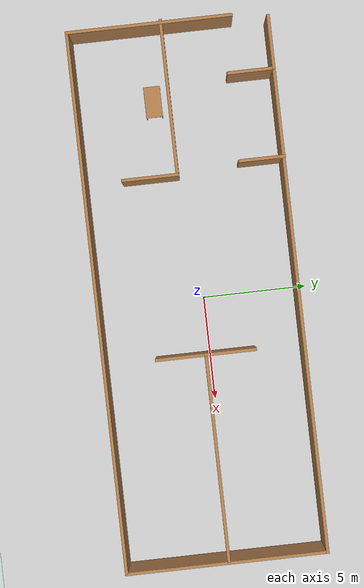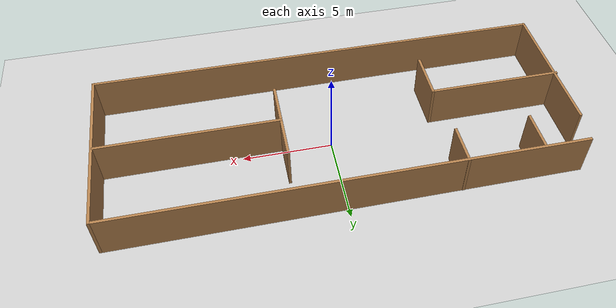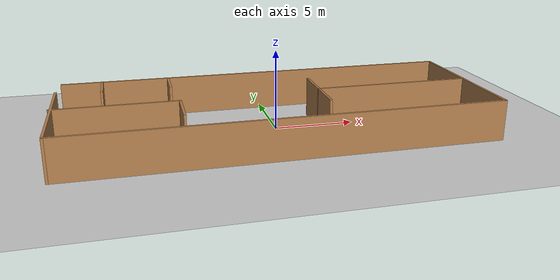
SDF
<sdf version="1.7">
 <world name="default">
  <model name="ground_plane">
   <static>1</static>
   <link name="link">
    <collision name="collision">
     <geometry><plane><normal>0 0 1</normal><size>100 100</size></plane></geometry>
     <surface><friction><ode><mu>100</mu><mu2>50</mu2></ode></friction></surface>
    </collision>
    <visual name="visual">
     <cast_shadows>0</cast_shadows>
     <geometry><plane><normal>0 0 1</normal><size>100 100</size></plane></geometry>
     <material>
      <script><uri>file://media/materials/scripts/gazebo.material</uri><name>Gazebo/Grey</name></script>
     </material>
    </visual>
   </link>
  </model>
  <light name="sun" type="directional">
   <pose>0 0 10 0 -0 0</pose>
   <diffuse>0.8 0.8 0.8 1</diffuse>
   <specular>0.2 0.2 0.2 1</specular>
   <attenuation>
    <range>1000</range>
    <constant>0.9</constant>
    <linear>0.01</linear>
    <quadratic>0.001</quadratic>
   </attenuation>
   <direction>-0.5 0.1 -0.9</direction>
   <spot><inner_angle>0</inner_angle><outer_angle>0</outer_angle><falloff>0</falloff></spot>
  </light>
  <scene><shadows>0</shadows><ambient>0.4 0.4 0.4 1</ambient><background>0.7 0.7 0.7 1</background></scene>
  <physics type="ode">
   <real_time_update_rate>1000</real_time_update_rate>
   <max_step_size>0.001</max_step_size>
   <real_time_factor>1</real_time_factor>
   <ode>
    <solver>
     <type>quick</type>
     <iters>150</iters>
     <precon_iters>0</precon_iters>
     <sor>1.4</sor>
     <use_dynamic_moi_rescaling>1</use_dynamic_moi_rescaling>
    </solver>
    <constraints>
     <cfm>1e-05</cfm>
     <erp>0.2</erp>
     <contact_max_correcting_vel>2000</contact_max_correcting_vel>
     <contact_surface_layer>0.01</contact_surface_layer>
    </constraints>
   </ode>
  </physics>
  <gravity>0 0 -9.8</gravity>
  <magnetic_field>6e-06 2.3e-05 -4.2e-05</magnetic_field>
  <atmosphere type="adiabatic"/>
  <audio><device>default</device></audio>
  <spherical_coordinates>
   <surface_model>EARTH_WGS84</surface_model>
   <latitude_deg>0</latitude_deg>
   <longitude_deg>0</longitude_deg>
   <elevation>0</elevation>
   <heading_deg>0</heading_deg>
  </spherical_coordinates>
  <model name="demo_robot">
   <pose>-0.313875 -0.299677 0 0 -0 0</pose>
   <link name="Wall_10">
    <collision name="Wall_10_Collision">
     <geometry><box><size>2.75 0.15 2.5</size></box></geometry>
     <pose>0 0 1.25 0 -0 0</pose>
    </collision>
    <visual name="Wall_10_Visual">
     <pose>0 0 1.25 0 -0 0</pose>
     <geometry><box><size>2.75 0.15 2.5</size></box></geometry>
     <material>
      <script><uri>file://media/materials/scripts/gazebo.material</uri><name>Gazebo/Wood</name></script>
      <ambient>1 1 1 1</ambient>
     </material>
     <meta><layer>0</layer></meta>
    </visual>
    <pose>-5.62022 -1.62507 0 0 -0 -1.5708</pose>
   </link>
   <link name="Wall_13">
    <collision name="Wall_13_Collision">
     <geometry><box><size>10 0.15 2.5</size></box></geometry>
     <pose>0 0 1.25 0 -0 0</pose>
    </collision>
    <visual name="Wall_13_Visual">
     <pose>0 0 1.25 0 -0 0</pose>
     <geometry><box><size>10 0.15 2.5</size></box></geometry>
     <material>
      <script><uri>file://media/materials/scripts/gazebo.material</uri><name>Gazebo/Wood</name></script>
      <ambient>1 1 1 1</ambient>
     </material>
     <meta><layer>0</layer></meta>
    </visual>
    <pose>7.95589 0.079485 0 0 -0 3.14159</pose>
   </link>
   <link name="Wall_14">
    <collision name="Wall_14_Collision">
     <geometry><box><size>2.5 0.15 2.5</size></box></geometry>
     <pose>0 0 1.25 0 -0 0</pose>
    </collision>
    <visual name="Wall_14_Visual">
     <pose>0 0 1.25 0 -0 0</pose>
     <geometry><box><size>2.5 0.15 2.5</size></box></geometry>
     <material>
      <script><uri>file://media/materials/scripts/gazebo.material</uri><name>Gazebo/Wood</name></script>
      <ambient>1 1 1 1</ambient>
     </material>
     <meta><layer>0</layer></meta>
    </visual>
    <pose>3.03089 1.25449 0 0 -0 1.5708</pose>
   </link>
   <link name="Wall_16">
    <collision name="Wall_16_Collision">
     <geometry><box><size>2.5 0.15 2.5</size></box></geometry>
     <pose>0 0 1.25 0 -0 0</pose>
    </collision>
    <visual name="Wall_16_Visual">
     <pose>0 0 1.25 0 -0 0</pose>
     <geometry><box><size>2.5 0.15 2.5</size></box></geometry>
     <material>
      <script><uri>file://media/materials/scripts/gazebo.material</uri><name>Gazebo/Wood</name></script>
      <ambient>1 1 1 1</ambient>
     </material>
     <meta><layer>0</layer></meta>
    </visual>
    <pose>3.03089 -1.09552 0 0 -0 -1.5708</pose>
   </link>
   <link name="Wall_18">
    <collision name="Wall_18_Collision">
     <geometry><box><size>2.25 0.15 2.5</size></box></geometry>
     <pose>0 0 1.25 0 -0 0</pose>
    </collision>
    <visual name="Wall_18_Visual">
     <pose>0 0 1.25 0 -0 0</pose>
     <geometry><box><size>2.25 0.15 2.5</size></box></geometry>
     <material>
      <script><uri>file://media/materials/scripts/gazebo.material</uri><name>Gazebo/Wood</name></script>
      <ambient>1 1 1 1</ambient>
     </material>
     <meta><layer>0</layer></meta>
    </visual>
    <pose>-10.1383 3.68188 0 0 -0 -1.5708</pose>
   </link>
   <link name="Wall_20">
    <collision name="Wall_20_Collision">
     <geometry><box><size>2.25 0.15 2.5</size></box></geometry>
     <pose>0 0 1.25 0 -0 0</pose>
    </collision>
    <visual name="Wall_20_Visual">
     <pose>0 0 1.25 0 -0 0</pose>
     <geometry><box><size>2.25 0.15 2.5</size></box></geometry>
     <material>
      <script><uri>file://media/materials/scripts/gazebo.material</uri><name>Gazebo/Wood</name></script>
      <ambient>1 1 1 1</ambient>
     </material>
     <meta><layer>0</layer></meta>
    </visual>
    <pose>-5.93095 3.76279 0 0 -0 -1.5708</pose>
   </link>
   <link name="Wall_3">
    <collision name="Wall_3_Collision">
     <geometry><box><size>25.75 0.15 2.5</size></box></geometry>
     <pose>0 0 1.25 0 -0 0</pose>
    </collision>
    <visual name="Wall_3_Visual">
     <pose>0 0 1.25 0 -0 0</pose>
     <geometry><box><size>25.75 0.15 2.5</size></box></geometry>
     <material>
      <script><uri>file://media/materials/scripts/gazebo.material</uri><name>Gazebo/Wood</name></script>
      <ambient>1 1 1 1</ambient>
     </material>
     <meta><layer>0</layer></meta>
    </visual>
    <pose>0.170223 4.78721 0 0 -0 0</pose>
   </link>
   <link name="Wall_4">
    <collision name="Wall_4_Collision">
     <geometry><box><size>9.75 0.15 2.5</size></box></geometry>
     <pose>0 0 1.25 0 -0 0</pose>
    </collision>
    <visual name="Wall_4_Visual">
     <pose>0 0 1.25 0 -0 0</pose>
     <geometry><box><size>9.75 0.15 2.5</size></box></geometry>
     <material>
      <script><uri>file://media/materials/scripts/gazebo.material</uri><name>Gazebo/Wood</name></script>
      <ambient>1 1 1 1</ambient>
     </material>
     <meta><layer>0</layer></meta>
    </visual>
    <pose>12.9702 -0.012787 0 0 -0 -1.5708</pose>
   </link>
   <link name="Wall_5">
    <collision name="Wall_5_Collision">
     <geometry><box><size>26 0.15 2.5</size></box></geometry>
     <pose>0 0 1.25 0 -0 0</pose>
    </collision>
    <visual name="Wall_5_Visual">
     <pose>0 0 1.25 0 -0 0</pose>
     <geometry><box><size>26 0.15 2.5</size></box></geometry>
     <material>
      <script><uri>file://media/materials/scripts/gazebo.material</uri><name>Gazebo/Wood</name></script>
      <ambient>1 1 1 1</ambient>
     </material>
     <meta><layer>0</layer></meta>
    </visual>
    <pose>0.045223 -4.81279 0 0 -0 3.14159</pose>
   </link>
   <link name="Wall_6">
    <collision name="Wall_6_Collision">
     <geometry><box><size>8 0.15 2.5</size></box></geometry>
     <pose>0 0 1.25 0 -0 0</pose>
    </collision>
    <visual name="Wall_6_Visual">
     <pose>0 0 1.25 0 -0 0</pose>
     <geometry><box><size>8 0.15 2.5</size></box></geometry>
     <material>
      <script><uri>file://media/materials/scripts/gazebo.material</uri><name>Gazebo/Wood</name></script>
      <ambient>1 1 1 1</ambient>
     </material>
     <meta><layer>0</layer></meta>
    </visual>
    <pose>-12.8798 -0.887787 0 0 -0 1.5708</pose>
   </link>
   <link name="Wall_9">
    <collision name="Wall_9_Collision">
     <geometry><box><size>7.5 0.15 2.5</size></box></geometry>
     <pose>0 0 1.25 0 -0 0</pose>
    </collision>
    <visual name="Wall_9_Visual">
     <pose>0 0 1.25 0 -0 0</pose>
     <geometry><box><size>7.5 0.15 2.5</size></box></geometry>
     <material>
      <script><uri>file://media/materials/scripts/gazebo.material</uri><name>Gazebo/Wood</name></script>
      <ambient>1 1 1 1</ambient>
     </material>
     <meta><layer>0</layer></meta>
    </visual>
    <pose>-9.29522 -0.325071 0 0 -0 0</pose>
   </link>
   <static>1</static>
  </model>
  <model name="table">
   <static>1</static>
   <link name="link">
    <collision name="surface">
     <pose>0 0 1 0 -0 0</pose>
     <geometry><box><size>1.5 0.8 0.03</size></box></geometry>
     <surface><friction><ode><mu>0.6</mu><mu2>0.6</mu2></ode></friction></surface>
    </collision>
    <visual name="visual1">
     <pose>0 0 1 0 -0 0</pose>
     <geometry><box><size>1.5 0.8 0.03</size></box></geometry>
     <material>
      <script><uri>file://media/materials/scripts/gazebo.material</uri><name>Gazebo/Wood</name></script>
     </material>
    </visual>
    <collision name="front_left_leg">
     <pose>0.68 0.38 0.5 0 -0 0</pose>
     <geometry><cylinder><radius>0.02</radius><length>1</length></cylinder></geometry>
    </collision>
    <visual name="front_left_leg">
     <pose>0.68 0.38 0.5 0 -0 0</pose>
     <geometry><cylinder><radius>0.02</radius><length>1</length></cylinder></geometry>
     <material>
      <script><uri>file://media/materials/scripts/gazebo.material</uri><name>Gazebo/Grey</name></script>
     </material>
    </visual>
    <collision name="front_right_leg">
     <pose>0.68 -0.38 0.5 0 -0 0</pose>
     <geometry><cylinder><radius>0.02</radius><length>1</length></cylinder></geometry>
    </collision>
    <visual name="front_right_leg">
     <pose>0.68 -0.38 0.5 0 -0 0</pose>
     <geometry><cylinder><radius>0.02</radius><length>1</length></cylinder></geometry>
     <material>
      <script><uri>file://media/materials/scripts/gazebo.material</uri><name>Gazebo/Grey</name></script>
     </material>
    </visual>
    <collision name="back_right_leg">
     <pose>-0.68 -0.38 0.5 0 -0 0</pose>
     <geometry><cylinder><radius>0.02</radius><length>1</length></cylinder></geometry>
    </collision>
    <visual name="back_right_leg">
     <pose>-0.68 -0.38 0.5 0 -0 0</pose>
     <geometry><cylinder><radius>0.02</radius><length>1</length></cylinder></geometry>
     <material>
      <script><uri>file://media/materials/scripts/gazebo.material</uri><name>Gazebo/Grey</name></script>
     </material>
    </visual>
    <collision name="back_left_leg">
     <pose>-0.68 0.38 0.5 0 -0 0</pose>
     <geometry><cylinder><radius>0.02</radius><length>1</length></cylinder></geometry>
    </collision>
    <visual name="back_left_leg">
     <pose>-0.68 0.38 0.5 0 -0 0</pose>
     <geometry><cylinder><radius>0.02</radius><length>1</length></cylinder></geometry>
     <material>
      <script><uri>file://media/materials/scripts/gazebo.material</uri><name>Gazebo/Grey</name></script>
     </material>
    </visual>
   </link>
   <pose>-9.69824 -1.41663 0 0 -0 0</pose>
  </model>
 </world>
</sdf>
